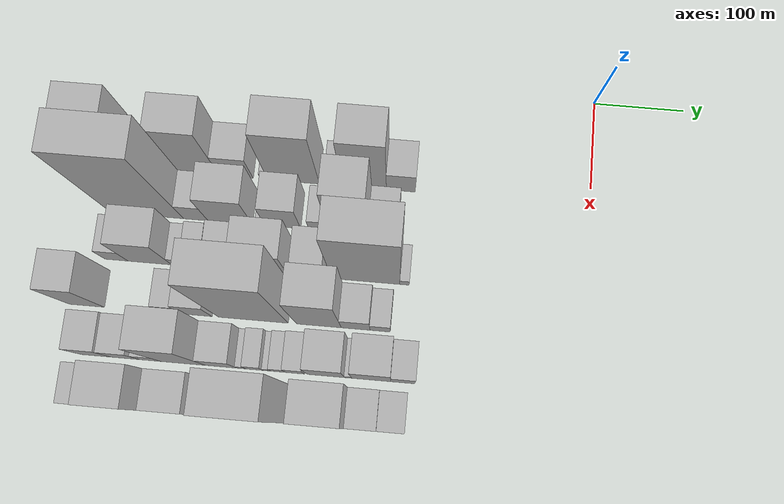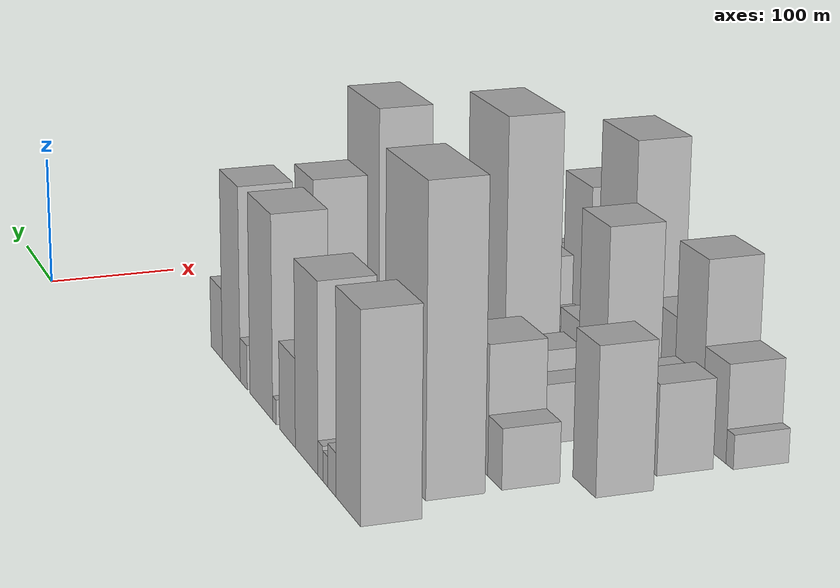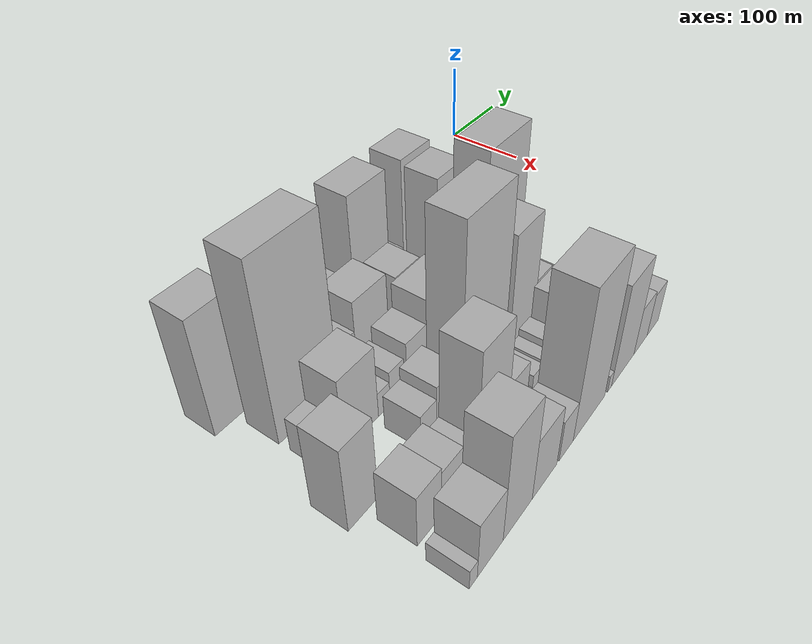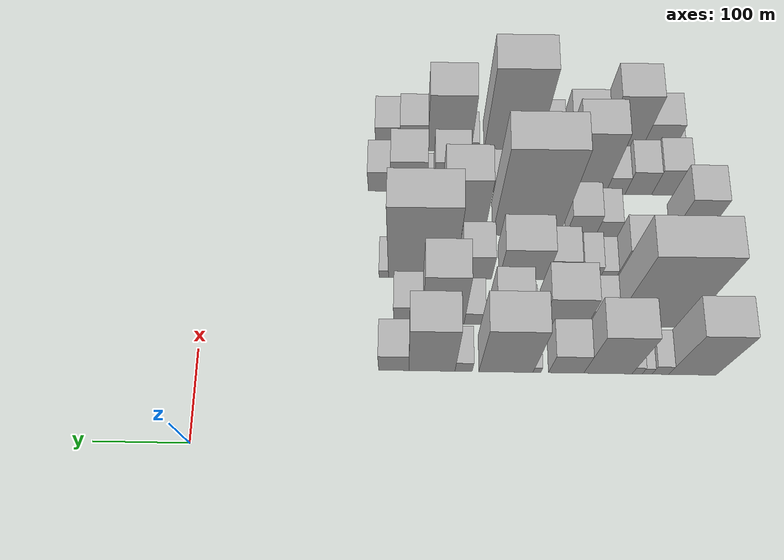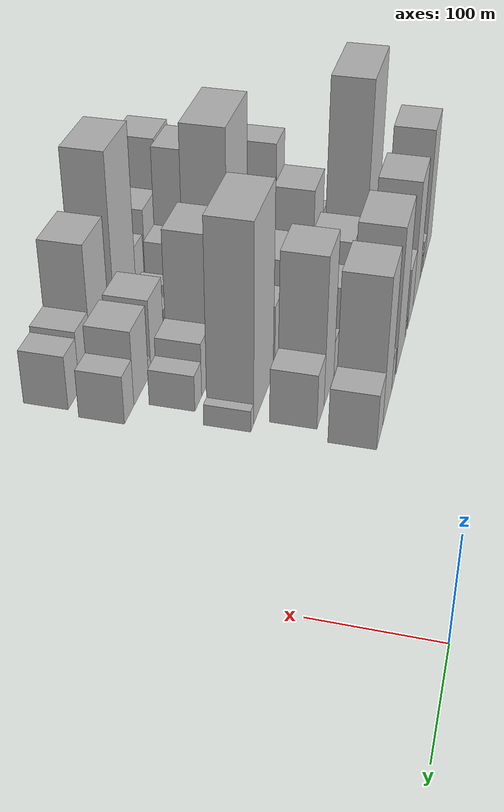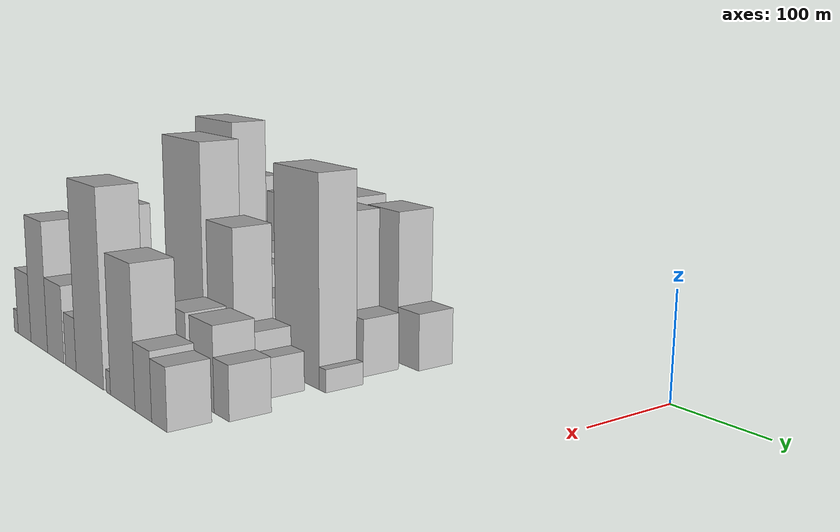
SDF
<sdf version="1.6">
 <world name="default">
  <model name="building_12">
   <static>1</static>
   <pose>100.0000 -523.2259 0 0.000000 0.000000 0.000000</pose>
   <link name="link">
    <pose>0 0 70.50 0 0 0</pose>
    <collision name="collision"><geometry><box><size>40.0000 49.7294 141.0000</size></box></geometry></collision>
    <visual name="visual">
     <cast_shadows>0</cast_shadows>
     <geometry><box><size>40.0000 49.7294 141.0000</size></box></geometry>
     <material>
      <script>
       <uri>model://HANNAS_wall/materials/scripts</uri>
       <uri>model://HANNAS_wall/materials/textures</uri>
       <name>vrc/HANNAS_wall</name>
      </script>
     </material>
    </visual>
   </link>
  </model>
  <model name="building_13">
   <static>1</static>
   <pose>100.0000 -489.3843 0 0.000000 0.000000 0.000000</pose>
   <link name="link">
    <pose>0 0 15.00 0 0 0</pose>
    <collision name="collision"><geometry><box><size>40.0000 17.9538 30.0000</size></box></geometry></collision>
    <visual name="visual">
     <cast_shadows>0</cast_shadows>
     <geometry><box><size>40.0000 17.9538 30.0000</size></box></geometry>
     <material>
      <script>
       <uri>model://HANNAS_wall/materials/scripts</uri>
       <uri>model://HANNAS_wall/materials/textures</uri>
       <name>vrc/HANNAS_wall</name>
      </script>
     </material>
    </visual>
   </link>
  </model>
  <model name="building_14">
   <static>1</static>
   <pose>100.0000 -475.2543 0 0.000000 0.000000 0.000000</pose>
   <link name="link">
    <pose>0 0 10.50 0 0 0</pose>
    <collision name="collision"><geometry><box><size>40.0000 10.3061 21.0000</size></box></geometry></collision>
    <visual name="visual">
     <cast_shadows>0</cast_shadows>
     <geometry><box><size>40.0000 10.3061 21.0000</size></box></geometry>
     <material>
      <script>
       <uri>model://HANNAS_wall/materials/scripts</uri>
       <uri>model://HANNAS_wall/materials/textures</uri>
       <name>vrc/HANNAS_wall</name>
      </script>
     </material>
    </visual>
   </link>
  </model>
  <model name="building_15">
   <static>1</static>
   <pose>100.0000 -464.8104 0 0.000000 0.000000 0.000000</pose>
   <link name="link">
    <pose>0 0 12.00 0 0 0</pose>
    <collision name="collision"><geometry><box><size>40.0000 10.5816 24.0000</size></box></geometry></collision>
    <visual name="visual">
     <cast_shadows>0</cast_shadows>
     <geometry><box><size>40.0000 10.5816 24.0000</size></box></geometry>
     <material>
      <script>
       <uri>model://HANNAS_wall/materials/scripts</uri>
       <uri>model://HANNAS_wall/materials/textures</uri>
       <name>vrc/HANNAS_wall</name>
      </script>
     </material>
    </visual>
   </link>
  </model>
  <model name="building_16">
   <static>1</static>
   <pose>100.0000 -434.1045 0 0.000000 0.000000 0.000000</pose>
   <link name="link">
    <pose>0 0 66.00 0 0 0</pose>
    <collision name="collision"><geometry><box><size>40.0000 50.8302 132.0000</size></box></geometry></collision>
    <visual name="visual">
     <cast_shadows>0</cast_shadows>
     <geometry><box><size>40.0000 50.8302 132.0000</size></box></geometry>
     <material>
      <script>
       <uri>model://HANNAS_wall/materials/scripts</uri>
       <uri>model://HANNAS_wall/materials/textures</uri>
       <name>vrc/HANNAS_wall</name>
      </script>
     </material>
    </visual>
   </link>
  </model>
  <model name="building_17">
   <static>1</static>
   <pose>100.0000 -390.0490 0 0.000000 0.000000 0.000000</pose>
   <link name="link">
    <pose>0 0 31.50 0 0 0</pose>
    <collision name="collision"><geometry><box><size>40.0000 37.2809 63.0000</size></box></geometry></collision>
    <visual name="visual">
     <cast_shadows>0</cast_shadows>
     <geometry><box><size>40.0000 37.2809 63.0000</size></box></geometry>
     <material>
      <script>
       <uri>model://HANNAS_wall/materials/scripts</uri>
       <uri>model://HANNAS_wall/materials/textures</uri>
       <name>vrc/HANNAS_wall</name>
      </script>
     </material>
    </visual>
   </link>
  </model>
  <model name="building_18">
   <static>1</static>
   <pose>100.0000 -359.2565 0 0.000000 0.000000 0.000000</pose>
   <link name="link">
    <pose>0 0 9.00 0 0 0</pose>
    <collision name="collision"><geometry><box><size>40.0000 8.3040 18.0000</size></box></geometry></collision>
    <visual name="visual">
     <cast_shadows>0</cast_shadows>
     <geometry><box><size>40.0000 8.3040 18.0000</size></box></geometry>
     <material>
      <script>
       <uri>model://HANNAS_wall/materials/scripts</uri>
       <uri>model://HANNAS_wall/materials/textures</uri>
       <name>vrc/HANNAS_wall</name>
      </script>
     </material>
    </visual>
   </link>
  </model>
  <model name="building_19">
   <static>1</static>
   <pose>100.0000 -326.4940 0 0.000000 0.000000 0.000000</pose>
   <link name="link">
    <pose>0 0 73.50 0 0 0</pose>
    <collision name="collision"><geometry><box><size>40.0000 57.2211 147.0000</size></box></geometry></collision>
    <visual name="visual">
     <cast_shadows>0</cast_shadows>
     <geometry><box><size>40.0000 57.2211 147.0000</size></box></geometry>
     <material>
      <script>
       <uri>model://HANNAS_wall/materials/scripts</uri>
       <uri>model://HANNAS_wall/materials/textures</uri>
       <name>vrc/HANNAS_wall</name>
      </script>
     </material>
    </visual>
   </link>
  </model>
  <model name="building_20">
   <static>1</static>
   <pose>100.0000 -281.8136 0 0.000000 0.000000 0.000000</pose>
   <link name="link">
    <pose>0 0 16.50 0 0 0</pose>
    <collision name="collision"><geometry><box><size>40.0000 18.1396 33.0000</size></box></geometry></collision>
    <visual name="visual">
     <cast_shadows>0</cast_shadows>
     <geometry><box><size>40.0000 18.1396 33.0000</size></box></geometry>
     <material>
      <script>
       <uri>model://HANNAS_wall/materials/scripts</uri>
       <uri>model://HANNAS_wall/materials/textures</uri>
       <name>vrc/HANNAS_wall</name>
      </script>
     </material>
    </visual>
   </link>
  </model>
  <model name="building_21">
   <static>1</static>
   <pose>100.0000 -248.3978 0 0.000000 0.000000 0.000000</pose>
   <link name="link">
    <pose>0 0 72.00 0 0 0</pose>
    <collision name="collision"><geometry><box><size>40.0000 48.6920 144.0000</size></box></geometry></collision>
    <visual name="visual">
     <cast_shadows>0</cast_shadows>
     <geometry><box><size>40.0000 48.6920 144.0000</size></box></geometry>
     <material>
      <script>
       <uri>model://HANNAS_wall/materials/scripts</uri>
       <uri>model://HANNAS_wall/materials/textures</uri>
       <name>vrc/HANNAS_wall</name>
      </script>
     </material>
    </visual>
   </link>
  </model>
  <model name="building_22">
   <static>1</static>
   <pose>100.0000 -208.1583 0 0.000000 0.000000 0.000000</pose>
   <link name="link">
    <pose>0 0 27.00 0 0 0</pose>
    <collision name="collision"><geometry><box><size>40.0000 31.7872 54.0000</size></box></geometry></collision>
    <visual name="visual">
     <cast_shadows>0</cast_shadows>
     <geometry><box><size>40.0000 31.7872 54.0000</size></box></geometry>
     <material>
      <script>
       <uri>model://HANNAS_wall/materials/scripts</uri>
       <uri>model://HANNAS_wall/materials/textures</uri>
       <name>vrc/HANNAS_wall</name>
      </script>
     </material>
    </visual>
   </link>
  </model>
  <model name="building_59">
   <static>1</static>
   <pose>152.0000 -481.5683 0 0.000000 0.000000 0.000000</pose>
   <link name="link">
    <pose>0 0 105.00 0 0 0</pose>
    <collision name="collision"><geometry><box><size>40.0000 80.1011 210.0000</size></box></geometry></collision>
    <visual name="visual">
     <cast_shadows>0</cast_shadows>
     <geometry><box><size>40.0000 80.1011 210.0000</size></box></geometry>
     <material>
      <script>
       <uri>model://HANNAS_wall/materials/scripts</uri>
       <uri>model://HANNAS_wall/materials/textures</uri>
       <name>vrc/HANNAS_wall</name>
      </script>
     </material>
    </visual>
   </link>
  </model>
  <model name="building_60">
   <static>1</static>
   <pose>152.0000 -428.1090 0 0.000000 0.000000 0.000000</pose>
   <link name="link">
    <pose>0 0 25.50 0 0 0</pose>
    <collision name="collision"><geometry><box><size>40.0000 26.8173 51.0000</size></box></geometry></collision>
    <visual name="visual">
     <cast_shadows>0</cast_shadows>
     <geometry><box><size>40.0000 26.8173 51.0000</size></box></geometry>
     <material>
      <script>
       <uri>model://HANNAS_wall/materials/scripts</uri>
       <uri>model://HANNAS_wall/materials/textures</uri>
       <name>vrc/HANNAS_wall</name>
      </script>
     </material>
    </visual>
   </link>
  </model>
  <model name="building_61">
   <static>1</static>
   <pose>152.0000 -390.2419 0 0.000000 0.000000 0.000000</pose>
   <link name="link">
    <pose>0 0 43.50 0 0 0</pose>
    <collision name="collision"><geometry><box><size>40.0000 48.9170 87.0000</size></box></geometry></collision>
    <visual name="visual">
     <cast_shadows>0</cast_shadows>
     <geometry><box><size>40.0000 48.9170 87.0000</size></box></geometry>
     <material>
      <script>
       <uri>model://HANNAS_wall/materials/scripts</uri>
       <uri>model://HANNAS_wall/materials/textures</uri>
       <name>vrc/HANNAS_wall</name>
      </script>
     </material>
    </visual>
   </link>
  </model>
  <model name="building_62">
   <static>1</static>
   <pose>152.0000 -356.3260 0 0.000000 0.000000 0.000000</pose>
   <link name="link">
    <pose>0 0 9.00 0 0 0</pose>
    <collision name="collision"><geometry><box><size>40.0000 8.9146 18.0000</size></box></geometry></collision>
    <visual name="visual">
     <cast_shadows>0</cast_shadows>
     <geometry><box><size>40.0000 8.9146 18.0000</size></box></geometry>
     <material>
      <script>
       <uri>model://HANNAS_wall/materials/scripts</uri>
       <uri>model://HANNAS_wall/materials/textures</uri>
       <name>vrc/HANNAS_wall</name>
      </script>
     </material>
    </visual>
   </link>
  </model>
  <model name="building_63">
   <static>1</static>
   <pose>152.0000 -332.4285 0 0.000000 0.000000 0.000000</pose>
   <link name="link">
    <pose>0 0 36.00 0 0 0</pose>
    <collision name="collision"><geometry><box><size>40.0000 38.8804 72.0000</size></box></geometry></collision>
    <visual name="visual">
     <cast_shadows>0</cast_shadows>
     <geometry><box><size>40.0000 38.8804 72.0000</size></box></geometry>
     <material>
      <script>
       <uri>model://HANNAS_wall/materials/scripts</uri>
       <uri>model://HANNAS_wall/materials/textures</uri>
       <name>vrc/HANNAS_wall</name>
      </script>
     </material>
    </visual>
   </link>
  </model>
  <model name="building_64">
   <static>1</static>
   <pose>152.0000 -293.2963 0 0.000000 0.000000 0.000000</pose>
   <link name="link">
    <pose>0 0 18.00 0 0 0</pose>
    <collision name="collision"><geometry><box><size>40.0000 21.3841 36.0000</size></box></geometry></collision>
    <visual name="visual">
     <cast_shadows>0</cast_shadows>
     <geometry><box><size>40.0000 21.3841 36.0000</size></box></geometry>
     <material>
      <script>
       <uri>model://HANNAS_wall/materials/scripts</uri>
       <uri>model://HANNAS_wall/materials/textures</uri>
       <name>vrc/HANNAS_wall</name>
      </script>
     </material>
    </visual>
   </link>
  </model>
  <model name="building_65">
   <static>1</static>
   <pose>152.0000 -260.2634 0 0.000000 0.000000 0.000000</pose>
   <link name="link">
    <pose>0 0 73.50 0 0 0</pose>
    <collision name="collision"><geometry><box><size>40.0000 44.6818 147.0000</size></box></geometry></collision>
    <visual name="visual">
     <cast_shadows>0</cast_shadows>
     <geometry><box><size>40.0000 44.6818 147.0000</size></box></geometry>
     <material>
      <script>
       <uri>model://HANNAS_wall/materials/scripts</uri>
       <uri>model://HANNAS_wall/materials/textures</uri>
       <name>vrc/HANNAS_wall</name>
      </script>
     </material>
    </visual>
   </link>
  </model>
  <model name="building_66">
   <static>1</static>
   <pose>152.0000 -222.4888 0 0.000000 0.000000 0.000000</pose>
   <link name="link">
    <pose>0 0 27.00 0 0 0</pose>
    <collision name="collision"><geometry><box><size>40.0000 30.8674 54.0000</size></box></geometry></collision>
    <visual name="visual">
     <cast_shadows>0</cast_shadows>
     <geometry><box><size>40.0000 30.8674 54.0000</size></box></geometry>
     <material>
      <script>
       <uri>model://HANNAS_wall/materials/scripts</uri>
       <uri>model://HANNAS_wall/materials/textures</uri>
       <name>vrc/HANNAS_wall</name>
      </script>
     </material>
    </visual>
   </link>
  </model>
  <model name="building_110">
   <static>1</static>
   <pose>204.0000 -507.5255 0 0.000000 0.000000 0.000000</pose>
   <link name="link">
    <pose>0 0 21.00 0 0 0</pose>
    <collision name="collision"><geometry><box><size>40.0000 25.1618 42.0000</size></box></geometry></collision>
    <visual name="visual">
     <cast_shadows>0</cast_shadows>
     <geometry><box><size>40.0000 25.1618 42.0000</size></box></geometry>
     <material>
      <script>
       <uri>model://HANNAS_wall/materials/scripts</uri>
       <uri>model://HANNAS_wall/materials/textures</uri>
       <name>vrc/HANNAS_wall</name>
      </script>
     </material>
    </visual>
   </link>
  </model>
  <model name="building_111">
   <static>1</static>
   <pose>204.0000 -471.1986 0 0.000000 0.000000 0.000000</pose>
   <link name="link">
    <pose>0 0 45.00 0 0 0</pose>
    <collision name="collision"><geometry><box><size>40.0000 47.4920 90.0000</size></box></geometry></collision>
    <visual name="visual">
     <cast_shadows>0</cast_shadows>
     <geometry><box><size>40.0000 47.4920 90.0000</size></box></geometry>
     <material>
      <script>
       <uri>model://HANNAS_wall/materials/scripts</uri>
       <uri>model://HANNAS_wall/materials/textures</uri>
       <name>vrc/HANNAS_wall</name>
      </script>
     </material>
    </visual>
   </link>
  </model>
  <model name="building_112">
   <static>1</static>
   <pose>204.0000 -438.7991 0 0.000000 0.000000 0.000000</pose>
   <link name="link">
    <pose>0 0 15.00 0 0 0</pose>
    <collision name="collision"><geometry><box><size>40.0000 17.3068 30.0000</size></box></geometry></collision>
    <visual name="visual">
     <cast_shadows>0</cast_shadows>
     <geometry><box><size>40.0000 17.3068 30.0000</size></box></geometry>
     <material>
      <script>
       <uri>model://HANNAS_wall/materials/scripts</uri>
       <uri>model://HANNAS_wall/materials/textures</uri>
       <name>vrc/HANNAS_wall</name>
      </script>
     </material>
    </visual>
   </link>
  </model>
  <model name="building_113">
   <static>1</static>
   <pose>204.0000 -419.4457 0 0.000000 0.000000 0.000000</pose>
   <link name="link">
    <pose>0 0 21.00 0 0 0</pose>
    <collision name="collision"><geometry><box><size>40.0000 21.4001 42.0000</size></box></geometry></collision>
    <visual name="visual">
     <cast_shadows>0</cast_shadows>
     <geometry><box><size>40.0000 21.4001 42.0000</size></box></geometry>
     <material>
      <script>
       <uri>model://HANNAS_wall/materials/scripts</uri>
       <uri>model://HANNAS_wall/materials/textures</uri>
       <name>vrc/HANNAS_wall</name>
      </script>
     </material>
    </visual>
   </link>
  </model>
  <model name="building_114">
   <static>1</static>
   <pose>204.0000 -388.9459 0 0.000000 0.000000 0.000000</pose>
   <link name="link">
    <pose>0 0 28.50 0 0 0</pose>
    <collision name="collision"><geometry><box><size>40.0000 31.5996 57.0000</size></box></geometry></collision>
    <visual name="visual">
     <cast_shadows>0</cast_shadows>
     <geometry><box><size>40.0000 31.5996 57.0000</size></box></geometry>
     <material>
      <script>
       <uri>model://HANNAS_wall/materials/scripts</uri>
       <uri>model://HANNAS_wall/materials/textures</uri>
       <name>vrc/HANNAS_wall</name>
      </script>
     </material>
    </visual>
   </link>
  </model>
  <model name="building_115">
   <static>1</static>
   <pose>204.0000 -347.1856 0 0.000000 0.000000 0.000000</pose>
   <link name="link">
    <pose>0 0 43.50 0 0 0</pose>
    <collision name="collision"><geometry><box><size>40.0000 51.9211 87.0000</size></box></geometry></collision>
    <visual name="visual">
     <cast_shadows>0</cast_shadows>
     <geometry><box><size>40.0000 51.9211 87.0000</size></box></geometry>
     <material>
      <script>
       <uri>model://HANNAS_wall/materials/scripts</uri>
       <uri>model://HANNAS_wall/materials/textures</uri>
       <name>vrc/HANNAS_wall</name>
      </script>
     </material>
    </visual>
   </link>
  </model>
  <model name="building_116">
   <static>1</static>
   <pose>204.0000 -296.3285 0 0.000000 0.000000 0.000000</pose>
   <link name="link">
    <pose>0 0 33.00 0 0 0</pose>
    <collision name="collision"><geometry><box><size>40.0000 33.7931 66.0000</size></box></geometry></collision>
    <visual name="visual">
     <cast_shadows>0</cast_shadows>
     <geometry><box><size>40.0000 33.7931 66.0000</size></box></geometry>
     <material>
      <script>
       <uri>model://HANNAS_wall/materials/scripts</uri>
       <uri>model://HANNAS_wall/materials/textures</uri>
       <name>vrc/HANNAS_wall</name>
      </script>
     </material>
    </visual>
   </link>
  </model>
  <model name="building_117">
   <static>1</static>
   <pose>204.0000 -236.9912 0 0.000000 0.000000 0.000000</pose>
   <link name="link">
    <pose>0 0 96.00 0 0 0</pose>
    <collision name="collision"><geometry><box><size>40.0000 72.8815 192.0000</size></box></geometry></collision>
    <visual name="visual">
     <cast_shadows>0</cast_shadows>
     <geometry><box><size>40.0000 72.8815 192.0000</size></box></geometry>
     <material>
      <script>
       <uri>model://HANNAS_wall/materials/scripts</uri>
       <uri>model://HANNAS_wall/materials/textures</uri>
       <name>vrc/HANNAS_wall</name>
      </script>
     </material>
    </visual>
   </link>
  </model>
  <model name="building_118">
   <static>1</static>
   <pose>204.0000 -195.4101 0 0.000000 0.000000 0.000000</pose>
   <link name="link">
    <pose>0 0 10.50 0 0 0</pose>
    <collision name="collision"><geometry><box><size>40.0000 10.2807 21.0000</size></box></geometry></collision>
    <visual name="visual">
     <cast_shadows>0</cast_shadows>
     <geometry><box><size>40.0000 10.2807 21.0000</size></box></geometry>
     <material>
      <script>
       <uri>model://HANNAS_wall/materials/scripts</uri>
       <uri>model://HANNAS_wall/materials/textures</uri>
       <name>vrc/HANNAS_wall</name>
      </script>
     </material>
    </visual>
   </link>
  </model>
  <model name="building_159">
   <static>1</static>
   <pose>256.0000 -531.5993 0 0.000000 0.000000 0.000000</pose>
   <link name="link">
    <pose>0 0 51.00 0 0 0</pose>
    <collision name="collision"><geometry><box><size>40.0000 37.7366 102.0000</size></box></geometry></collision>
    <visual name="visual">
     <cast_shadows>0</cast_shadows>
     <geometry><box><size>40.0000 37.7366 102.0000</size></box></geometry>
     <material>
      <script>
       <uri>model://HANNAS_wall/materials/scripts</uri>
       <uri>model://HANNAS_wall/materials/textures</uri>
       <name>vrc/HANNAS_wall</name>
      </script>
     </material>
    </visual>
   </link>
  </model>
  <model name="building_160">
   <static>1</static>
   <pose>256.0000 -441.6354 0 0.000000 0.000000 0.000000</pose>
   <link name="link">
    <pose>0 0 21.00 0 0 0</pose>
    <collision name="collision"><geometry><box><size>40.0000 24.0637 42.0000</size></box></geometry></collision>
    <visual name="visual">
     <cast_shadows>0</cast_shadows>
     <geometry><box><size>40.0000 24.0637 42.0000</size></box></geometry>
     <material>
      <script>
       <uri>model://HANNAS_wall/materials/scripts</uri>
       <uri>model://HANNAS_wall/materials/textures</uri>
       <name>vrc/HANNAS_wall</name>
      </script>
     </material>
    </visual>
   </link>
  </model>
  <model name="building_161">
   <static>1</static>
   <pose>256.0000 -413.1277 0 0.000000 0.000000 0.000000</pose>
   <link name="link">
    <pose>0 0 28.50 0 0 0</pose>
    <collision name="collision"><geometry><box><size>40.0000 32.9516 57.0000</size></box></geometry></collision>
    <visual name="visual">
     <cast_shadows>0</cast_shadows>
     <geometry><box><size>40.0000 32.9516 57.0000</size></box></geometry>
     <material>
      <script>
       <uri>model://HANNAS_wall/materials/scripts</uri>
       <uri>model://HANNAS_wall/materials/textures</uri>
       <name>vrc/HANNAS_wall</name>
      </script>
     </material>
    </visual>
   </link>
  </model>
  <model name="building_162">
   <static>1</static>
   <pose>256.0000 -352.3380 0 0.000000 0.000000 0.000000</pose>
   <link name="link">
    <pose>0 0 105.00 0 0 0</pose>
    <collision name="collision"><geometry><box><size>40.0000 74.6278 210.0000</size></box></geometry></collision>
    <visual name="visual">
     <cast_shadows>0</cast_shadows>
     <geometry><box><size>40.0000 74.6278 210.0000</size></box></geometry>
     <material>
      <script>
       <uri>model://HANNAS_wall/materials/scripts</uri>
       <uri>model://HANNAS_wall/materials/textures</uri>
       <name>vrc/HANNAS_wall</name>
      </script>
     </material>
    </visual>
   </link>
  </model>
  <model name="building_163">
   <static>1</static>
   <pose>256.0000 -282.0888 0 0.000000 0.000000 0.000000</pose>
   <link name="link">
    <pose>0 0 70.50 0 0 0</pose>
    <collision name="collision"><geometry><box><size>40.0000 47.8705 141.0000</size></box></geometry></collision>
    <visual name="visual">
     <cast_shadows>0</cast_shadows>
     <geometry><box><size>40.0000 47.8705 141.0000</size></box></geometry>
     <material>
      <script>
       <uri>model://HANNAS_wall/materials/scripts</uri>
       <uri>model://HANNAS_wall/materials/textures</uri>
       <name>vrc/HANNAS_wall</name>
      </script>
     </material>
    </visual>
   </link>
  </model>
  <model name="building_164">
   <static>1</static>
   <pose>256.0000 -242.8004 0 0.000000 0.000000 0.000000</pose>
   <link name="link">
    <pose>0 0 27.00 0 0 0</pose>
    <collision name="collision"><geometry><box><size>40.0000 30.7063 54.0000</size></box></geometry></collision>
    <visual name="visual">
     <cast_shadows>0</cast_shadows>
     <geometry><box><size>40.0000 30.7063 54.0000</size></box></geometry>
     <material>
      <script>
       <uri>model://HANNAS_wall/materials/scripts</uri>
       <uri>model://HANNAS_wall/materials/textures</uri>
       <name>vrc/HANNAS_wall</name>
      </script>
     </material>
    </visual>
   </link>
  </model>
  <model name="building_165">
   <static>1</static>
   <pose>256.0000 -216.7515 0 0.000000 0.000000 0.000000</pose>
   <link name="link">
    <pose>0 0 18.00 0 0 0</pose>
    <collision name="collision"><geometry><box><size>40.0000 21.3916 36.0000</size></box></geometry></collision>
    <visual name="visual">
     <cast_shadows>0</cast_shadows>
     <geometry><box><size>40.0000 21.3916 36.0000</size></box></geometry>
     <material>
      <script>
       <uri>model://HANNAS_wall/materials/scripts</uri>
       <uri>model://HANNAS_wall/materials/textures</uri>
       <name>vrc/HANNAS_wall</name>
      </script>
     </material>
    </visual>
   </link>
  </model>
  <model name="building_204">
   <static>1</static>
   <pose>308.0000 -512.5398 0 0.000000 0.000000 0.000000</pose>
   <link name="link">
    <pose>0 0 31.50 0 0 0</pose>
    <collision name="collision"><geometry><box><size>40.0000 32.8054 63.0000</size></box></geometry></collision>
    <visual name="visual">
     <cast_shadows>0</cast_shadows>
     <geometry><box><size>40.0000 32.8054 63.0000</size></box></geometry>
     <material>
      <script>
       <uri>model://HANNAS_wall/materials/scripts</uri>
       <uri>model://HANNAS_wall/materials/textures</uri>
       <name>vrc/HANNAS_wall</name>
      </script>
     </material>
    </visual>
   </link>
  </model>
  <model name="building_205">
   <static>1</static>
   <pose>308.0000 -481.1709 0 0.000000 0.000000 0.000000</pose>
   <link name="link">
    <pose>0 0 28.50 0 0 0</pose>
    <collision name="collision"><geometry><box><size>40.0000 29.9323 57.0000</size></box></geometry></collision>
    <visual name="visual">
     <cast_shadows>0</cast_shadows>
     <geometry><box><size>40.0000 29.9323 57.0000</size></box></geometry>
     <material>
      <script>
       <uri>model://HANNAS_wall/materials/scripts</uri>
       <uri>model://HANNAS_wall/materials/textures</uri>
       <name>vrc/HANNAS_wall</name>
      </script>
     </material>
    </visual>
   </link>
  </model>
  <model name="building_206">
   <static>1</static>
   <pose>308.0000 -454.9356 0 0.000000 0.000000 0.000000</pose>
   <link name="link">
    <pose>0 0 21.00 0 0 0</pose>
    <collision name="collision"><geometry><box><size>40.0000 22.5383 42.0000</size></box></geometry></collision>
    <visual name="visual">
     <cast_shadows>0</cast_shadows>
     <geometry><box><size>40.0000 22.5383 42.0000</size></box></geometry>
     <material>
      <script>
       <uri>model://HANNAS_wall/materials/scripts</uri>
       <uri>model://HANNAS_wall/materials/textures</uri>
       <name>vrc/HANNAS_wall</name>
      </script>
     </material>
    </visual>
   </link>
  </model>
  <model name="building_207">
   <static>1</static>
   <pose>308.0000 -419.8298 0 0.000000 0.000000 0.000000</pose>
   <link name="link">
    <pose>0 0 72.00 0 0 0</pose>
    <collision name="collision"><geometry><box><size>40.0000 47.6735 144.0000</size></box></geometry></collision>
    <visual name="visual">
     <cast_shadows>0</cast_shadows>
     <geometry><box><size>40.0000 47.6735 144.0000</size></box></geometry>
     <material>
      <script>
       <uri>model://HANNAS_wall/materials/scripts</uri>
       <uri>model://HANNAS_wall/materials/textures</uri>
       <name>vrc/HANNAS_wall</name>
      </script>
     </material>
    </visual>
   </link>
  </model>
  <model name="building_208">
   <static>1</static>
   <pose>308.0000 -379.3973 0 0.000000 0.000000 0.000000</pose>
   <link name="link">
    <pose>0 0 31.50 0 0 0</pose>
    <collision name="collision"><geometry><box><size>40.0000 33.1915 63.0000</size></box></geometry></collision>
    <visual name="visual">
     <cast_shadows>0</cast_shadows>
     <geometry><box><size>40.0000 33.1915 63.0000</size></box></geometry>
     <material>
      <script>
       <uri>model://HANNAS_wall/materials/scripts</uri>
       <uri>model://HANNAS_wall/materials/textures</uri>
       <name>vrc/HANNAS_wall</name>
      </script>
     </material>
    </visual>
   </link>
  </model>
  <model name="building_209">
   <static>1</static>
   <pose>308.0000 -358.1611 0 0.000000 0.000000 0.000000</pose>
   <link name="link">
    <pose>0 0 10.50 0 0 0</pose>
    <collision name="collision"><geometry><box><size>40.0000 9.2810 21.0000</size></box></geometry></collision>
    <visual name="visual">
     <cast_shadows>0</cast_shadows>
     <geometry><box><size>40.0000 9.2810 21.0000</size></box></geometry>
     <material>
      <script>
       <uri>model://HANNAS_wall/materials/scripts</uri>
       <uri>model://HANNAS_wall/materials/textures</uri>
       <name>vrc/HANNAS_wall</name>
      </script>
     </material>
    </visual>
   </link>
  </model>
  <model name="building_210">
   <static>1</static>
   <pose>308.0000 -344.3675 0 0.000000 0.000000 0.000000</pose>
   <link name="link">
    <pose>0 0 18.00 0 0 0</pose>
    <collision name="collision"><geometry><box><size>40.0000 18.3061 36.0000</size></box></geometry></collision>
    <visual name="visual">
     <cast_shadows>0</cast_shadows>
     <geometry><box><size>40.0000 18.3061 36.0000</size></box></geometry>
     <material>
      <script>
       <uri>model://HANNAS_wall/materials/scripts</uri>
       <uri>model://HANNAS_wall/materials/textures</uri>
       <name>vrc/HANNAS_wall</name>
      </script>
     </material>
    </visual>
   </link>
  </model>
  <model name="building_211">
   <static>1</static>
   <pose>308.0000 -331.2438 0 0.000000 0.000000 0.000000</pose>
   <link name="link">
    <pose>0 0 9.00 0 0 0</pose>
    <collision name="collision"><geometry><box><size>40.0000 7.9414 18.0000</size></box></geometry></collision>
    <visual name="visual">
     <cast_shadows>0</cast_shadows>
     <geometry><box><size>40.0000 7.9414 18.0000</size></box></geometry>
     <material>
      <script>
       <uri>model://HANNAS_wall/materials/scripts</uri>
       <uri>model://HANNAS_wall/materials/textures</uri>
       <name>vrc/HANNAS_wall</name>
      </script>
     </material>
    </visual>
   </link>
  </model>
  <model name="building_212">
   <static>1</static>
   <pose>308.0000 -319.6777 0 0.000000 0.000000 0.000000</pose>
   <link name="link">
    <pose>0 0 15.00 0 0 0</pose>
    <collision name="collision"><geometry><box><size>40.0000 15.1908 30.0000</size></box></geometry></collision>
    <visual name="visual">
     <cast_shadows>0</cast_shadows>
     <geometry><box><size>40.0000 15.1908 30.0000</size></box></geometry>
     <material>
      <script>
       <uri>model://HANNAS_wall/materials/scripts</uri>
       <uri>model://HANNAS_wall/materials/textures</uri>
       <name>vrc/HANNAS_wall</name>
      </script>
     </material>
    </visual>
   </link>
  </model>
  <model name="building_213">
   <static>1</static>
   <pose>308.0000 -301.9006 0 0.000000 0.000000 0.000000</pose>
   <link name="link">
    <pose>0 0 19.50 0 0 0</pose>
    <collision name="collision"><geometry><box><size>40.0000 20.3633 39.0000</size></box></geometry></collision>
    <visual name="visual">
     <cast_shadows>0</cast_shadows>
     <geometry><box><size>40.0000 20.3633 39.0000</size></box></geometry>
     <material>
      <script>
       <uri>model://HANNAS_wall/materials/scripts</uri>
       <uri>model://HANNAS_wall/materials/textures</uri>
       <name>vrc/HANNAS_wall</name>
      </script>
     </material>
    </visual>
   </link>
  </model>
  <model name="building_214">
   <static>1</static>
   <pose>308.0000 -269.1275 0 0.000000 0.000000 0.000000</pose>
   <link name="link">
    <pose>0 0 37.50 0 0 0</pose>
    <collision name="collision"><geometry><box><size>40.0000 39.1830 75.0000</size></box></geometry></collision>
    <visual name="visual">
     <cast_shadows>0</cast_shadows>
     <geometry><box><size>40.0000 39.1830 75.0000</size></box></geometry>
     <material>
      <script>
       <uri>model://HANNAS_wall/materials/scripts</uri>
       <uri>model://HANNAS_wall/materials/textures</uri>
       <name>vrc/HANNAS_wall</name>
      </script>
     </material>
    </visual>
   </link>
  </model>
  <model name="building_215">
   <static>1</static>
   <pose>308.0000 -245.7541 0 0.000000 0.000000 0.000000</pose>
   <link name="link">
    <pose>0 0 9.00 0 0 0</pose>
    <collision name="collision"><geometry><box><size>40.0000 7.5638 18.0000</size></box></geometry></collision>
    <visual name="visual">
     <cast_shadows>0</cast_shadows>
     <geometry><box><size>40.0000 7.5638 18.0000</size></box></geometry>
     <material>
      <script>
       <uri>model://HANNAS_wall/materials/scripts</uri>
       <uri>model://HANNAS_wall/materials/textures</uri>
       <name>vrc/HANNAS_wall</name>
      </script>
     </material>
    </visual>
   </link>
  </model>
  <model name="building_216">
   <static>1</static>
   <pose>308.0000 -221.6010 0 0.000000 0.000000 0.000000</pose>
   <link name="link">
    <pose>0 0 37.50 0 0 0</pose>
    <collision name="collision"><geometry><box><size>40.0000 40.7425 75.0000</size></box></geometry></collision>
    <visual name="visual">
     <cast_shadows>0</cast_shadows>
     <geometry><box><size>40.0000 40.7425 75.0000</size></box></geometry>
     <material>
      <script>
       <uri>model://HANNAS_wall/materials/scripts</uri>
       <uri>model://HANNAS_wall/materials/textures</uri>
       <name>vrc/HANNAS_wall</name>
      </script>
     </material>
    </visual>
   </link>
  </model>
  <model name="building_217">
   <static>1</static>
   <pose>308.0000 -188.4343 0 0.000000 0.000000 0.000000</pose>
   <link name="link">
    <pose>0 0 24.00 0 0 0</pose>
    <collision name="collision"><geometry><box><size>40.0000 25.5908 48.0000</size></box></geometry></collision>
    <visual name="visual">
     <cast_shadows>0</cast_shadows>
     <geometry><box><size>40.0000 25.5908 48.0000</size></box></geometry>
     <material>
      <script>
       <uri>model://HANNAS_wall/materials/scripts</uri>
       <uri>model://HANNAS_wall/materials/textures</uri>
       <name>vrc/HANNAS_wall</name>
      </script>
     </material>
    </visual>
   </link>
  </model>
  <model name="building_256">
   <static>1</static>
   <pose>360.0000 -528.6492 0 0.000000 0.000000 0.000000</pose>
   <link name="link">
    <pose>0 0 12.00 0 0 0</pose>
    <collision name="collision"><geometry><box><size>40.0000 11.0486 24.0000</size></box></geometry></collision>
    <visual name="visual">
     <cast_shadows>0</cast_shadows>
     <geometry><box><size>40.0000 11.0486 24.0000</size></box></geometry>
     <material>
      <script>
       <uri>model://HANNAS_wall/materials/scripts</uri>
       <uri>model://HANNAS_wall/materials/textures</uri>
       <name>vrc/HANNAS_wall</name>
      </script>
     </material>
    </visual>
   </link>
  </model>
  <model name="building_257">
   <static>1</static>
   <pose>360.0000 -504.6559 0 0.000000 0.000000 0.000000</pose>
   <link name="link">
    <pose>0 0 34.50 0 0 0</pose>
    <collision name="collision"><geometry><box><size>40.0000 36.9380 69.0000</size></box></geometry></collision>
    <visual name="visual">
     <cast_shadows>0</cast_shadows>
     <geometry><box><size>40.0000 36.9380 69.0000</size></box></geometry>
     <material>
      <script>
       <uri>model://HANNAS_wall/materials/scripts</uri>
       <uri>model://HANNAS_wall/materials/textures</uri>
       <name>vrc/HANNAS_wall</name>
      </script>
     </material>
    </visual>
   </link>
  </model>
  <model name="building_258">
   <static>1</static>
   <pose>360.0000 -463.6071 0 0.000000 0.000000 0.000000</pose>
   <link name="link">
    <pose>0 0 64.50 0 0 0</pose>
    <collision name="collision"><geometry><box><size>40.0000 45.1596 129.0000</size></box></geometry></collision>
    <visual name="visual">
     <cast_shadows>0</cast_shadows>
     <geometry><box><size>40.0000 45.1596 129.0000</size></box></geometry>
     <material>
      <script>
       <uri>model://HANNAS_wall/materials/scripts</uri>
       <uri>model://HANNAS_wall/materials/textures</uri>
       <name>vrc/HANNAS_wall</name>
      </script>
     </material>
    </visual>
   </link>
  </model>
  <model name="building_259">
   <static>1</static>
   <pose>360.0000 -420.0544 0 0.000000 0.000000 0.000000</pose>
   <link name="link">
    <pose>0 0 37.50 0 0 0</pose>
    <collision name="collision"><geometry><box><size>40.0000 41.9460 75.0000</size></box></geometry></collision>
    <visual name="visual">
     <cast_shadows>0</cast_shadows>
     <geometry><box><size>40.0000 41.9460 75.0000</size></box></geometry>
     <material>
      <script>
       <uri>model://HANNAS_wall/materials/scripts</uri>
       <uri>model://HANNAS_wall/materials/textures</uri>
       <name>vrc/HANNAS_wall</name>
      </script>
     </material>
    </visual>
   </link>
  </model>
  <model name="building_260">
   <static>1</static>
   <pose>360.0000 -382.2548 0 0.000000 0.000000 0.000000</pose>
   <link name="link">
    <pose>0 0 25.50 0 0 0</pose>
    <collision name="collision"><geometry><box><size>40.0000 25.6531 51.0000</size></box></geometry></collision>
    <visual name="visual">
     <cast_shadows>0</cast_shadows>
     <geometry><box><size>40.0000 25.6531 51.0000</size></box></geometry>
     <material>
      <script>
       <uri>model://HANNAS_wall/materials/scripts</uri>
       <uri>model://HANNAS_wall/materials/textures</uri>
       <name>vrc/HANNAS_wall</name>
      </script>
     </material>
    </visual>
   </link>
  </model>
  <model name="building_261">
   <static>1</static>
   <pose>360.0000 -338.2842 0 0.000000 0.000000 0.000000</pose>
   <link name="link">
    <pose>0 0 90.00 0 0 0</pose>
    <collision name="collision"><geometry><box><size>40.0000 62.2883 180.0000</size></box></geometry></collision>
    <visual name="visual">
     <cast_shadows>0</cast_shadows>
     <geometry><box><size>40.0000 62.2883 180.0000</size></box></geometry>
     <material>
      <script>
       <uri>model://HANNAS_wall/materials/scripts</uri>
       <uri>model://HANNAS_wall/materials/textures</uri>
       <name>vrc/HANNAS_wall</name>
      </script>
     </material>
    </visual>
   </link>
  </model>
  <model name="building_262">
   <static>1</static>
   <pose>360.0000 -296.8295 0 0.000000 0.000000 0.000000</pose>
   <link name="link">
    <pose>0 0 10.50 0 0 0</pose>
    <collision name="collision"><geometry><box><size>40.0000 8.6211 21.0000</size></box></geometry></collision>
    <visual name="visual">
     <cast_shadows>0</cast_shadows>
     <geometry><box><size>40.0000 8.6211 21.0000</size></box></geometry>
     <material>
      <script>
       <uri>model://HANNAS_wall/materials/scripts</uri>
       <uri>model://HANNAS_wall/materials/textures</uri>
       <name>vrc/HANNAS_wall</name>
      </script>
     </material>
    </visual>
   </link>
  </model>
  <model name="building_263">
   <static>1</static>
   <pose>360.0000 -267.5234 0 0.000000 0.000000 0.000000</pose>
   <link name="link">
    <pose>0 0 63.00 0 0 0</pose>
    <collision name="collision"><geometry><box><size>40.0000 49.9911 126.0000</size></box></geometry></collision>
    <visual name="visual">
     <cast_shadows>0</cast_shadows>
     <geometry><box><size>40.0000 49.9911 126.0000</size></box></geometry>
     <material>
      <script>
       <uri>model://HANNAS_wall/materials/scripts</uri>
       <uri>model://HANNAS_wall/materials/textures</uri>
       <name>vrc/HANNAS_wall</name>
      </script>
     </material>
    </visual>
   </link>
  </model>
  <model name="building_264">
   <static>1</static>
   <pose>360.0000 -226.6748 0 0.000000 0.000000 0.000000</pose>
   <link name="link">
    <pose>0 0 30.00 0 0 0</pose>
    <collision name="collision"><geometry><box><size>40.0000 31.7061 60.0000</size></box></geometry></collision>
    <visual name="visual">
     <cast_shadows>0</cast_shadows>
     <geometry><box><size>40.0000 31.7061 60.0000</size></box></geometry>
     <material>
      <script>
       <uri>model://HANNAS_wall/materials/scripts</uri>
       <uri>model://HANNAS_wall/materials/textures</uri>
       <name>vrc/HANNAS_wall</name>
      </script>
     </material>
    </visual>
   </link>
  </model>
  <model name="building_265">
   <static>1</static>
   <pose>360.0000 -196.8664 0 0.000000 0.000000 0.000000</pose>
   <link name="link">
    <pose>0 0 27.00 0 0 0</pose>
    <collision name="collision"><geometry><box><size>40.0000 27.9108 54.0000</size></box></geometry></collision>
    <visual name="visual">
     <cast_shadows>0</cast_shadows>
     <geometry><box><size>40.0000 27.9108 54.0000</size></box></geometry>
     <material>
      <script>
       <uri>model://HANNAS_wall/materials/scripts</uri>
       <uri>model://HANNAS_wall/materials/textures</uri>
       <name>vrc/HANNAS_wall</name>
      </script>
     </material>
    </visual>
   </link>
  </model>
 </world>
</sdf>
